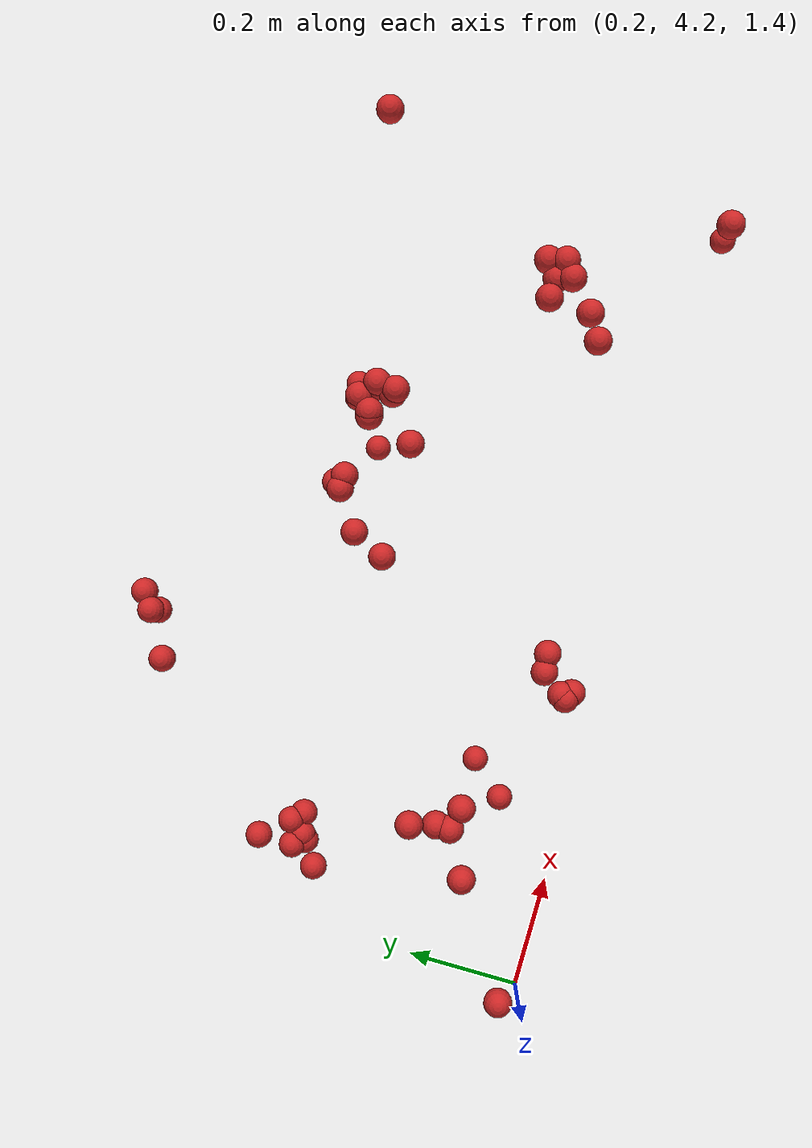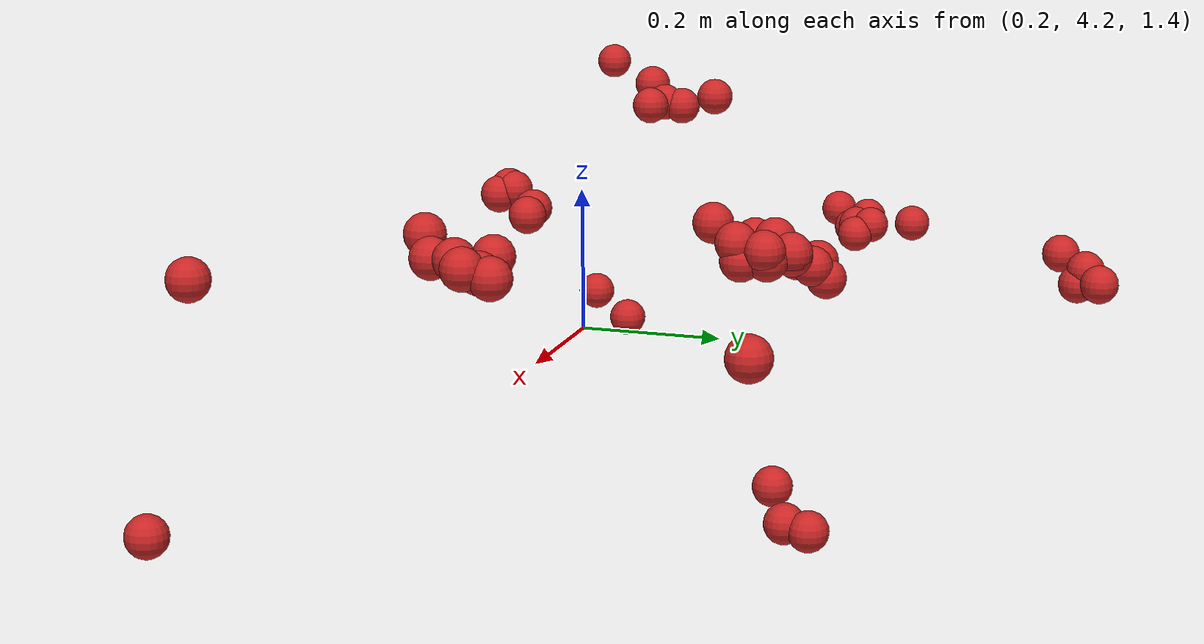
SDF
<sdf version="1.4">
 <model name="fruit_population">
  <static>true</static>
  <link name="fruit_1">
   <pose>0.6268716875807037 4.940532719705032 1.6558627617804011 0 0 0</pose>
   <collision name="fruit_collision_1"><geometry><sphere><radius>0.022</radius></sphere></geometry></collision>
   <visual name="visual">
    <geometry><sphere><radius>0.022</radius></sphere></geometry>
    <material><script><name>Gazebo/Red</name></script></material>
   </visual>
   <inertial>
    <mass>0.05</mass>
    <inertia>
     <ixx>9.679999999999999e-06</ixx>
     <ixy>0.0</ixy>
     <ixz>0.0</ixz>
     <iyy>9.679999999999999e-06</iyy>
     <iyz>0.0</iyz>
     <izz>9.679999999999999e-06</izz>
    </inertia>
   </inertial>
   <sensor name="fruit_contact_1" type="contact">
    <plugin name="contact_plugin_1" filename="libcontact_plugin.so"/>
    <contact><collision>fruit_collision_1</collision><topic>fruit_contact_topic_1</topic></contact>
   </sensor>
  </link>
  <link name="fruit_12">
   <pose>0.44819699912349803 4.381450276059013 1.8008207811406862 0 0 0</pose>
   <collision name="fruit_collision_12"><geometry><sphere><radius>0.022</radius></sphere></geometry></collision>
   <visual name="visual">
    <geometry><sphere><radius>0.022</radius></sphere></geometry>
    <material><script><name>Gazebo/Red</name></script></material>
   </visual>
   <inertial>
    <mass>0.05</mass>
    <inertia>
     <ixx>9.679999999999999e-06</ixx>
     <ixy>0.0</ixy>
     <ixz>0.0</ixz>
     <iyy>9.679999999999999e-06</iyy>
     <iyz>0.0</iyz>
     <izz>9.679999999999999e-06</izz>
    </inertia>
   </inertial>
   <sensor name="fruit_contact_12" type="contact">
    <plugin name="contact_plugin_12" filename="libcontact_plugin.so"/>
    <contact><collision>fruit_collision_12</collision><topic>fruit_contact_topic_12</topic></contact>
   </sensor>
  </link>
  <link name="fruit_18">
   <pose>1.5570567154464645 4.816590890720439 1.7625111153330046 0 0 0</pose>
   <collision name="fruit_collision_18"><geometry><sphere><radius>0.022</radius></sphere></geometry></collision>
   <visual name="visual">
    <geometry><sphere><radius>0.022</radius></sphere></geometry>
    <material><script><name>Gazebo/Red</name></script></material>
   </visual>
   <inertial>
    <mass>0.05</mass>
    <inertia>
     <ixx>9.679999999999999e-06</ixx>
     <ixy>0.0</ixy>
     <ixz>0.0</ixz>
     <iyy>9.679999999999999e-06</iyy>
     <iyz>0.0</iyz>
     <izz>9.679999999999999e-06</izz>
    </inertia>
   </inertial>
   <sensor name="fruit_contact_18" type="contact">
    <plugin name="contact_plugin_18" filename="libcontact_plugin.so"/>
    <contact><collision>fruit_collision_18</collision><topic>fruit_contact_topic_18</topic></contact>
   </sensor>
  </link>
  <link name="fruit_19">
   <pose>1.0663812729314095 4.6417188984754585 1.7673388412002566 0 0 0</pose>
   <collision name="fruit_collision_19"><geometry><sphere><radius>0.022</radius></sphere></geometry></collision>
   <visual name="visual">
    <geometry><sphere><radius>0.022</radius></sphere></geometry>
    <material><script><name>Gazebo/Red</name></script></material>
   </visual>
   <inertial>
    <mass>0.05</mass>
    <inertia>
     <ixx>9.679999999999999e-06</ixx>
     <ixy>0.0</ixy>
     <ixz>0.0</ixz>
     <iyy>9.679999999999999e-06</iyy>
     <iyz>0.0</iyz>
     <izz>9.679999999999999e-06</izz>
    </inertia>
   </inertial>
   <sensor name="fruit_contact_19" type="contact">
    <plugin name="contact_plugin_19" filename="libcontact_plugin.so"/>
    <contact><collision>fruit_collision_19</collision><topic>fruit_contact_topic_19</topic></contact>
   </sensor>
  </link>
  <link name="fruit_38">
   <pose>1.070645255882961 4.709657848097736 1.4847056623996329 0 0 0</pose>
   <collision name="fruit_collision_38"><geometry><sphere><radius>0.022</radius></sphere></geometry></collision>
   <visual name="visual">
    <geometry><sphere><radius>0.022</radius></sphere></geometry>
    <material><script><name>Gazebo/Red</name></script></material>
   </visual>
   <inertial>
    <mass>0.05</mass>
    <inertia>
     <ixx>9.679999999999999e-06</ixx>
     <ixy>0.0</ixy>
     <ixz>0.0</ixz>
     <iyy>9.679999999999999e-06</iyy>
     <iyz>0.0</iyz>
     <izz>9.679999999999999e-06</izz>
    </inertia>
   </inertial>
   <sensor name="fruit_contact_38" type="contact">
    <plugin name="contact_plugin_38" filename="libcontact_plugin.so"/>
    <contact><collision>fruit_collision_38</collision><topic>fruit_contact_topic_38</topic></contact>
   </sensor>
  </link>
  <link name="fruit_53">
   <pose>1.5242109869858662 4.26219862006467 1.785706966964252 0 0 0</pose>
   <collision name="fruit_collision_53"><geometry><sphere><radius>0.022</radius></sphere></geometry></collision>
   <visual name="visual">
    <geometry><sphere><radius>0.022</radius></sphere></geometry>
    <material><script><name>Gazebo/Red</name></script></material>
   </visual>
   <inertial>
    <mass>0.05</mass>
    <inertia>
     <ixx>9.679999999999999e-06</ixx>
     <ixy>0.0</ixy>
     <ixz>0.0</ixz>
     <iyy>9.679999999999999e-06</iyy>
     <iyz>0.0</iyz>
     <izz>9.679999999999999e-06</izz>
    </inertia>
   </inertial>
   <sensor name="fruit_contact_53" type="contact">
    <plugin name="contact_plugin_53" filename="libcontact_plugin.so"/>
    <contact><collision>fruit_collision_53</collision><topic>fruit_contact_topic_53</topic></contact>
   </sensor>
  </link>
  <link name="fruit_69">
   <pose>0.8867764399283509 4.6385173389754195 1.7123552750118896 0 0 0</pose>
   <collision name="fruit_collision_69"><geometry><sphere><radius>0.022</radius></sphere></geometry></collision>
   <visual name="visual">
    <geometry><sphere><radius>0.022</radius></sphere></geometry>
    <material><script><name>Gazebo/Red</name></script></material>
   </visual>
   <inertial>
    <mass>0.05</mass>
    <inertia>
     <ixx>9.679999999999999e-06</ixx>
     <ixy>0.0</ixy>
     <ixz>0.0</ixz>
     <iyy>9.679999999999999e-06</iyy>
     <iyz>0.0</iyz>
     <izz>9.679999999999999e-06</izz>
    </inertia>
   </inertial>
   <sensor name="fruit_contact_69" type="contact">
    <plugin name="contact_plugin_69" filename="libcontact_plugin.so"/>
    <contact><collision>fruit_collision_69</collision><topic>fruit_contact_topic_69</topic></contact>
   </sensor>
  </link>
  <link name="fruit_99">
   <pose>0.36439027850367117 4.60906329372714 1.6344997106774708 0 0 0</pose>
   <collision name="fruit_collision_99"><geometry><sphere><radius>0.022</radius></sphere></geometry></collision>
   <visual name="visual">
    <geometry><sphere><radius>0.022</radius></sphere></geometry>
    <material><script><name>Gazebo/Red</name></script></material>
   </visual>
   <inertial>
    <mass>0.05</mass>
    <inertia>
     <ixx>9.679999999999999e-06</ixx>
     <ixy>0.0</ixy>
     <ixz>0.0</ixz>
     <iyy>9.679999999999999e-06</iyy>
     <iyz>0.0</iyz>
     <izz>9.679999999999999e-06</izz>
    </inertia>
   </inertial>
   <sensor name="fruit_contact_99" type="contact">
    <plugin name="contact_plugin_99" filename="libcontact_plugin.so"/>
    <contact><collision>fruit_collision_99</collision><topic>fruit_contact_topic_99</topic></contact>
   </sensor>
  </link>
  <link name="fruit_157">
   <pose>0.545321587531662 4.3369321960063365 1.5474871934077898 0 0 0</pose>
   <collision name="fruit_collision_157"><geometry><sphere><radius>0.022</radius></sphere></geometry></collision>
   <visual name="visual">
    <geometry><sphere><radius>0.022</radius></sphere></geometry>
    <material><script><name>Gazebo/Red</name></script></material>
   </visual>
   <inertial>
    <mass>0.05</mass>
    <inertia>
     <ixx>9.679999999999999e-06</ixx>
     <ixy>0.0</ixy>
     <ixz>0.0</ixz>
     <iyy>9.679999999999999e-06</iyy>
     <iyz>0.0</iyz>
     <izz>9.679999999999999e-06</izz>
    </inertia>
   </inertial>
   <sensor name="fruit_contact_157" type="contact">
    <plugin name="contact_plugin_157" filename="libcontact_plugin.so"/>
    <contact><collision>fruit_collision_157</collision><topic>fruit_contact_topic_157</topic></contact>
   </sensor>
  </link>
  <link name="fruit_163">
   <pose>1.295377468097587 4.408551309530067 1.789480864994658 0 0 0</pose>
   <collision name="fruit_collision_163"><geometry><sphere><radius>0.022</radius></sphere></geometry></collision>
   <visual name="visual">
    <geometry><sphere><radius>0.022</radius></sphere></geometry>
    <material><script><name>Gazebo/Red</name></script></material>
   </visual>
   <inertial>
    <mass>0.05</mass>
    <inertia>
     <ixx>9.679999999999999e-06</ixx>
     <ixy>0.0</ixy>
     <ixz>0.0</ixz>
     <iyy>9.679999999999999e-06</iyy>
     <iyz>0.0</iyz>
     <izz>9.679999999999999e-06</izz>
    </inertia>
   </inertial>
   <sensor name="fruit_contact_163" type="contact">
    <plugin name="contact_plugin_163" filename="libcontact_plugin.so"/>
    <contact><collision>fruit_collision_163</collision><topic>fruit_contact_topic_163</topic></contact>
   </sensor>
  </link>
  <link name="fruit_188">
   <pose>1.4020292296075825 4.488908763232888 1.7836861283247563 0 0 0</pose>
   <collision name="fruit_collision_188"><geometry><sphere><radius>0.022</radius></sphere></geometry></collision>
   <visual name="visual">
    <geometry><sphere><radius>0.022</radius></sphere></geometry>
    <material><script><name>Gazebo/Red</name></script></material>
   </visual>
   <inertial>
    <mass>0.05</mass>
    <inertia>
     <ixx>9.679999999999999e-06</ixx>
     <ixy>0.0</ixy>
     <ixz>0.0</ixz>
     <iyy>9.679999999999999e-06</iyy>
     <iyz>0.0</iyz>
     <izz>9.679999999999999e-06</izz>
    </inertia>
   </inertial>
   <sensor name="fruit_contact_188" type="contact">
    <plugin name="contact_plugin_188" filename="libcontact_plugin.so"/>
    <contact><collision>fruit_collision_188</collision><topic>fruit_contact_topic_188</topic></contact>
   </sensor>
  </link>
  <link name="fruit_242">
   <pose>1.3400622330531486 4.498283157083825 1.782795921436244 0 0 0</pose>
   <collision name="fruit_collision_242"><geometry><sphere><radius>0.022</radius></sphere></geometry></collision>
   <visual name="visual">
    <geometry><sphere><radius>0.022</radius></sphere></geometry>
    <material><script><name>Gazebo/Red</name></script></material>
   </visual>
   <inertial>
    <mass>0.05</mass>
    <inertia>
     <ixx>9.679999999999999e-06</ixx>
     <ixy>0.0</ixy>
     <ixz>0.0</ixz>
     <iyy>9.679999999999999e-06</iyy>
     <iyz>0.0</iyz>
     <izz>9.679999999999999e-06</izz>
    </inertia>
   </inertial>
   <sensor name="fruit_contact_242" type="contact">
    <plugin name="contact_plugin_242" filename="libcontact_plugin.so"/>
    <contact><collision>fruit_collision_242</collision><topic>fruit_contact_topic_242</topic></contact>
   </sensor>
  </link>
  <link name="fruit_252">
   <pose>0.5153598926560027 4.419124262074022 1.7904099302804168 0 0 0</pose>
   <collision name="fruit_collision_252"><geometry><sphere><radius>0.022</radius></sphere></geometry></collision>
   <visual name="visual">
    <geometry><sphere><radius>0.022</radius></sphere></geometry>
    <material><script><name>Gazebo/Red</name></script></material>
   </visual>
   <inertial>
    <mass>0.05</mass>
    <inertia>
     <ixx>9.679999999999999e-06</ixx>
     <ixy>0.0</ixy>
     <ixz>0.0</ixz>
     <iyy>9.679999999999999e-06</iyy>
     <iyz>0.0</iyz>
     <izz>9.679999999999999e-06</izz>
    </inertia>
   </inertial>
   <sensor name="fruit_contact_252" type="contact">
    <plugin name="contact_plugin_252" filename="libcontact_plugin.so"/>
    <contact><collision>fruit_collision_252</collision><topic>fruit_contact_topic_252</topic></contact>
   </sensor>
  </link>
  <link name="fruit_255">
   <pose>1.1423439730178384 4.692723143088374 1.7469650057438793 0 0 0</pose>
   <collision name="fruit_collision_255"><geometry><sphere><radius>0.022</radius></sphere></geometry></collision>
   <visual name="visual">
    <geometry><sphere><radius>0.022</radius></sphere></geometry>
    <material><script><name>Gazebo/Red</name></script></material>
   </visual>
   <inertial>
    <mass>0.05</mass>
    <inertia>
     <ixx>9.679999999999999e-06</ixx>
     <ixy>0.0</ixy>
     <ixz>0.0</ixz>
     <iyy>9.679999999999999e-06</iyy>
     <iyz>0.0</iyz>
     <izz>9.679999999999999e-06</izz>
    </inertia>
   </inertial>
   <sensor name="fruit_contact_255" type="contact">
    <plugin name="contact_plugin_255" filename="libcontact_plugin.so"/>
    <contact><collision>fruit_collision_255</collision><topic>fruit_contact_topic_255</topic></contact>
   </sensor>
  </link>
  <link name="fruit_300">
   <pose>1.172685055337823 4.775176139858782 1.4737755704153654 0 0 0</pose>
   <collision name="fruit_collision_300"><geometry><sphere><radius>0.022</radius></sphere></geometry></collision>
   <visual name="visual">
    <geometry><sphere><radius>0.022</radius></sphere></geometry>
    <material><script><name>Gazebo/Red</name></script></material>
   </visual>
   <inertial>
    <mass>0.05</mass>
    <inertia>
     <ixx>9.679999999999999e-06</ixx>
     <ixy>0.0</ixy>
     <ixz>0.0</ixz>
     <iyy>9.679999999999999e-06</iyy>
     <iyz>0.0</iyz>
     <izz>9.679999999999999e-06</izz>
    </inertia>
   </inertial>
   <sensor name="fruit_contact_300" type="contact">
    <plugin name="contact_plugin_300" filename="libcontact_plugin.so"/>
    <contact><collision>fruit_collision_300</collision><topic>fruit_contact_topic_300</topic></contact>
   </sensor>
  </link>
  <link name="fruit_322">
   <pose>1.097991436302067 4.717594768584651 1.7626333214689136 0 0 0</pose>
   <collision name="fruit_collision_322"><geometry><sphere><radius>0.022</radius></sphere></geometry></collision>
   <visual name="visual">
    <geometry><sphere><radius>0.022</radius></sphere></geometry>
    <material><script><name>Gazebo/Red</name></script></material>
   </visual>
   <inertial>
    <mass>0.05</mass>
    <inertia>
     <ixx>9.679999999999999e-06</ixx>
     <ixy>0.0</ixy>
     <ixz>0.0</ixz>
     <iyy>9.679999999999999e-06</iyy>
     <iyz>0.0</iyz>
     <izz>9.679999999999999e-06</izz>
    </inertia>
   </inertial>
   <sensor name="fruit_contact_322" type="contact">
    <plugin name="contact_plugin_322" filename="libcontact_plugin.so"/>
    <contact><collision>fruit_collision_322</collision><topic>fruit_contact_topic_322</topic></contact>
   </sensor>
  </link>
  <link name="fruit_335">
   <pose>1.1453027904382111 4.718740151769678 1.7594774257249952 0 0 0</pose>
   <collision name="fruit_collision_335"><geometry><sphere><radius>0.022</radius></sphere></geometry></collision>
   <visual name="visual">
    <geometry><sphere><radius>0.022</radius></sphere></geometry>
    <material><script><name>Gazebo/Red</name></script></material>
   </visual>
   <inertial>
    <mass>0.05</mass>
    <inertia>
     <ixx>9.679999999999999e-06</ixx>
     <ixy>0.0</ixy>
     <ixz>0.0</ixz>
     <iyy>9.679999999999999e-06</iyy>
     <iyz>0.0</iyz>
     <izz>9.679999999999999e-06</izz>
    </inertia>
   </inertial>
   <sensor name="fruit_contact_335" type="contact">
    <plugin name="contact_plugin_335" filename="libcontact_plugin.so"/>
    <contact><collision>fruit_collision_335</collision><topic>fruit_contact_topic_335</topic></contact>
   </sensor>
  </link>
  <link name="fruit_356">
   <pose>0.6982810661970471 4.980665280813307 1.6547869145320597 0 0 0</pose>
   <collision name="fruit_collision_356"><geometry><sphere><radius>0.022</radius></sphere></geometry></collision>
   <visual name="visual">
    <geometry><sphere><radius>0.022</radius></sphere></geometry>
    <material><script><name>Gazebo/Red</name></script></material>
   </visual>
   <inertial>
    <mass>0.05</mass>
    <inertia>
     <ixx>9.679999999999999e-06</ixx>
     <ixy>0.0</ixy>
     <ixz>0.0</ixz>
     <iyy>9.679999999999999e-06</iyy>
     <iyz>0.0</iyz>
     <izz>9.679999999999999e-06</izz>
    </inertia>
   </inertial>
   <sensor name="fruit_contact_356" type="contact">
    <plugin name="contact_plugin_356" filename="libcontact_plugin.so"/>
    <contact><collision>fruit_collision_356</collision><topic>fruit_contact_topic_356</topic></contact>
   </sensor>
  </link>
  <link name="fruit_365">
   <pose>1.1671185223395906 4.748139728810999 1.4779096118876456 0 0 0</pose>
   <collision name="fruit_collision_365"><geometry><sphere><radius>0.022</radius></sphere></geometry></collision>
   <visual name="visual">
    <geometry><sphere><radius>0.022</radius></sphere></geometry>
    <material><script><name>Gazebo/Red</name></script></material>
   </visual>
   <inertial>
    <mass>0.05</mass>
    <inertia>
     <ixx>9.679999999999999e-06</ixx>
     <ixy>0.0</ixy>
     <ixz>0.0</ixz>
     <iyy>9.679999999999999e-06</iyy>
     <iyz>0.0</iyz>
     <izz>9.679999999999999e-06</izz>
    </inertia>
   </inertial>
   <sensor name="fruit_contact_365" type="contact">
    <plugin name="contact_plugin_365" filename="libcontact_plugin.so"/>
    <contact><collision>fruit_collision_365</collision><topic>fruit_contact_topic_365</topic></contact>
   </sensor>
  </link>
  <link name="fruit_395">
   <pose>0.9817444167910996 4.744051529683934 1.6945989434015323 0 0 0</pose>
   <collision name="fruit_collision_395"><geometry><sphere><radius>0.022</radius></sphere></geometry></collision>
   <visual name="visual">
    <geometry><sphere><radius>0.022</radius></sphere></geometry>
    <material><script><name>Gazebo/Red</name></script></material>
   </visual>
   <inertial>
    <mass>0.05</mass>
    <inertia>
     <ixx>9.679999999999999e-06</ixx>
     <ixy>0.0</ixy>
     <ixz>0.0</ixz>
     <iyy>9.679999999999999e-06</iyy>
     <iyz>0.0</iyz>
     <izz>9.679999999999999e-06</izz>
    </inertia>
   </inertial>
   <sensor name="fruit_contact_395" type="contact">
    <plugin name="contact_plugin_395" filename="libcontact_plugin.so"/>
    <contact><collision>fruit_collision_395</collision><topic>fruit_contact_topic_395</topic></contact>
   </sensor>
  </link>
  <link name="fruit_409">
   <pose>1.0913173838853178 4.716090269865388 1.759116730018196 0 0 0</pose>
   <collision name="fruit_collision_409"><geometry><sphere><radius>0.022</radius></sphere></geometry></collision>
   <visual name="visual">
    <geometry><sphere><radius>0.022</radius></sphere></geometry>
    <material><script><name>Gazebo/Red</name></script></material>
   </visual>
   <inertial>
    <mass>0.05</mass>
    <inertia>
     <ixx>9.679999999999999e-06</ixx>
     <ixy>0.0</ixy>
     <ixz>0.0</ixz>
     <iyy>9.679999999999999e-06</iyy>
     <iyz>0.0</iyz>
     <izz>9.679999999999999e-06</izz>
    </inertia>
   </inertial>
   <sensor name="fruit_contact_409" type="contact">
    <plugin name="contact_plugin_409" filename="libcontact_plugin.so"/>
    <contact><collision>fruit_collision_409</collision><topic>fruit_contact_topic_409</topic></contact>
   </sensor>
  </link>
  <link name="fruit_412">
   <pose>0.5951130778094091 4.394124011528825 1.5292582503342225 0 0 0</pose>
   <collision name="fruit_collision_412"><geometry><sphere><radius>0.022</radius></sphere></geometry></collision>
   <visual name="visual">
    <geometry><sphere><radius>0.022</radius></sphere></geometry>
    <material><script><name>Gazebo/Red</name></script></material>
   </visual>
   <inertial>
    <mass>0.05</mass>
    <inertia>
     <ixx>9.679999999999999e-06</ixx>
     <ixy>0.0</ixy>
     <ixz>0.0</ixz>
     <iyy>9.679999999999999e-06</iyy>
     <iyz>0.0</iyz>
     <izz>9.679999999999999e-06</izz>
    </inertia>
   </inertial>
   <sensor name="fruit_contact_412" type="contact">
    <plugin name="contact_plugin_412" filename="libcontact_plugin.so"/>
    <contact><collision>fruit_collision_412</collision><topic>fruit_contact_topic_412</topic></contact>
   </sensor>
  </link>
  <link name="fruit_413">
   <pose>0.9725382806093936 4.732624582610956 1.7116157954532485 0 0 0</pose>
   <collision name="fruit_collision_413"><geometry><sphere><radius>0.022</radius></sphere></geometry></collision>
   <visual name="visual">
    <geometry><sphere><radius>0.022</radius></sphere></geometry>
    <material><script><name>Gazebo/Red</name></script></material>
   </visual>
   <inertial>
    <mass>0.05</mass>
    <inertia>
     <ixx>9.679999999999999e-06</ixx>
     <ixy>0.0</ixy>
     <ixz>0.0</ixz>
     <iyy>9.679999999999999e-06</iyy>
     <iyz>0.0</iyz>
     <izz>9.679999999999999e-06</izz>
    </inertia>
   </inertial>
   <sensor name="fruit_contact_413" type="contact">
    <plugin name="contact_plugin_413" filename="libcontact_plugin.so"/>
    <contact><collision>fruit_collision_413</collision><topic>fruit_contact_topic_413</topic></contact>
   </sensor>
  </link>
  <link name="fruit_432">
   <pose>0.7507250656913239 4.296528254518869 1.7215826404641388 0 0 0</pose>
   <collision name="fruit_collision_432"><geometry><sphere><radius>0.022</radius></sphere></geometry></collision>
   <visual name="visual">
    <geometry><sphere><radius>0.022</radius></sphere></geometry>
    <material><script><name>Gazebo/Red</name></script></material>
   </visual>
   <inertial>
    <mass>0.05</mass>
    <inertia>
     <ixx>9.679999999999999e-06</ixx>
     <ixy>0.0</ixy>
     <ixz>0.0</ixz>
     <iyy>9.679999999999999e-06</iyy>
     <iyz>0.0</iyz>
     <izz>9.679999999999999e-06</izz>
    </inertia>
   </inertial>
   <sensor name="fruit_contact_432" type="contact">
    <plugin name="contact_plugin_432" filename="libcontact_plugin.so"/>
    <contact><collision>fruit_collision_432</collision><topic>fruit_contact_topic_432</topic></contact>
   </sensor>
  </link>
  <link name="fruit_435">
   <pose>1.1415333248598025 4.687539730238879 1.7655265319167788 0 0 0</pose>
   <collision name="fruit_collision_435"><geometry><sphere><radius>0.022</radius></sphere></geometry></collision>
   <visual name="visual">
    <geometry><sphere><radius>0.022</radius></sphere></geometry>
    <material><script><name>Gazebo/Red</name></script></material>
   </visual>
   <inertial>
    <mass>0.05</mass>
    <inertia>
     <ixx>9.679999999999999e-06</ixx>
     <ixy>0.0</ixy>
     <ixz>0.0</ixz>
     <iyy>9.679999999999999e-06</iyy>
     <iyz>0.0</iyz>
     <izz>9.679999999999999e-06</izz>
    </inertia>
   </inertial>
   <sensor name="fruit_contact_435" type="contact">
    <plugin name="contact_plugin_435" filename="libcontact_plugin.so"/>
    <contact><collision>fruit_collision_435</collision><topic>fruit_contact_topic_435</topic></contact>
   </sensor>
  </link>
  <link name="fruit_447">
   <pose>0.42668727103367415 4.665409721074229 1.6295891832143186 0 0 0</pose>
   <collision name="fruit_collision_447"><geometry><sphere><radius>0.022</radius></sphere></geometry></collision>
   <visual name="visual">
    <geometry><sphere><radius>0.022</radius></sphere></geometry>
    <material><script><name>Gazebo/Red</name></script></material>
   </visual>
   <inertial>
    <mass>0.05</mass>
    <inertia>
     <ixx>9.679999999999999e-06</ixx>
     <ixy>0.0</ixy>
     <ixz>0.0</ixz>
     <iyy>9.679999999999999e-06</iyy>
     <iyz>0.0</iyz>
     <izz>9.679999999999999e-06</izz>
    </inertia>
   </inertial>
   <sensor name="fruit_contact_447" type="contact">
    <plugin name="contact_plugin_447" filename="libcontact_plugin.so"/>
    <contact><collision>fruit_collision_447</collision><topic>fruit_contact_topic_447</topic></contact>
   </sensor>
  </link>
  <link name="fruit_451">
   <pose>0.7817834640024806 4.3379617858398465 1.7045733943934085 0 0 0</pose>
   <collision name="fruit_collision_451"><geometry><sphere><radius>0.022</radius></sphere></geometry></collision>
   <visual name="visual">
    <geometry><sphere><radius>0.022</radius></sphere></geometry>
    <material><script><name>Gazebo/Red</name></script></material>
   </visual>
   <inertial>
    <mass>0.05</mass>
    <inertia>
     <ixx>9.679999999999999e-06</ixx>
     <ixy>0.0</ixy>
     <ixz>0.0</ixz>
     <iyy>9.679999999999999e-06</iyy>
     <iyz>0.0</iyz>
     <izz>9.679999999999999e-06</izz>
    </inertia>
   </inertial>
   <sensor name="fruit_contact_451" type="contact">
    <plugin name="contact_plugin_451" filename="libcontact_plugin.so"/>
    <contact><collision>fruit_collision_451</collision><topic>fruit_contact_topic_451</topic></contact>
   </sensor>
  </link>
  <link name="fruit_454">
   <pose>1.5741906275128232 4.233580302229205 1.5458675319499797 0 0 0</pose>
   <collision name="fruit_collision_454"><geometry><sphere><radius>0.022</radius></sphere></geometry></collision>
   <visual name="visual">
    <geometry><sphere><radius>0.022</radius></sphere></geometry>
    <material><script><name>Gazebo/Red</name></script></material>
   </visual>
   <inertial>
    <mass>0.05</mass>
    <inertia>
     <ixx>9.679999999999999e-06</ixx>
     <ixy>0.0</ixy>
     <ixz>0.0</ixz>
     <iyy>9.679999999999999e-06</iyy>
     <iyz>0.0</iyz>
     <izz>9.679999999999999e-06</izz>
    </inertia>
   </inertial>
   <sensor name="fruit_contact_454" type="contact">
    <plugin name="contact_plugin_454" filename="libcontact_plugin.so"/>
    <contact><collision>fruit_collision_454</collision><topic>fruit_contact_topic_454</topic></contact>
   </sensor>
  </link>
  <link name="fruit_456">
   <pose>0.44182261255140226 4.64887360171303 1.6199301048223758 0 0 0</pose>
   <collision name="fruit_collision_456"><geometry><sphere><radius>0.022</radius></sphere></geometry></collision>
   <visual name="visual">
    <geometry><sphere><radius>0.022</radius></sphere></geometry>
    <material><script><name>Gazebo/Red</name></script></material>
   </visual>
   <inertial>
    <mass>0.05</mass>
    <inertia>
     <ixx>9.679999999999999e-06</ixx>
     <ixy>0.0</ixy>
     <ixz>0.0</ixz>
     <iyy>9.679999999999999e-06</iyy>
     <iyz>0.0</iyz>
     <izz>9.679999999999999e-06</izz>
    </inertia>
   </inertial>
   <sensor name="fruit_contact_456" type="contact">
    <plugin name="contact_plugin_456" filename="libcontact_plugin.so"/>
    <contact><collision>fruit_collision_456</collision><topic>fruit_contact_topic_456</topic></contact>
   </sensor>
  </link>
  <link name="fruit_485">
   <pose>1.3976903651793053 4.516371115489015 1.7752943761480415 0 0 0</pose>
   <collision name="fruit_collision_485"><geometry><sphere><radius>0.022</radius></sphere></geometry></collision>
   <visual name="visual">
    <geometry><sphere><radius>0.022</radius></sphere></geometry>
    <material><script><name>Gazebo/Red</name></script></material>
   </visual>
   <inertial>
    <mass>0.05</mass>
    <inertia>
     <ixx>9.679999999999999e-06</ixx>
     <ixy>0.0</ixy>
     <ixz>0.0</ixz>
     <iyy>9.679999999999999e-06</iyy>
     <iyz>0.0</iyz>
     <izz>9.679999999999999e-06</izz>
    </inertia>
   </inertial>
   <sensor name="fruit_contact_485" type="contact">
    <plugin name="contact_plugin_485" filename="libcontact_plugin.so"/>
    <contact><collision>fruit_collision_485</collision><topic>fruit_contact_topic_485</topic></contact>
   </sensor>
  </link>
  <link name="fruit_490">
   <pose>0.5150994826582773 4.441160708165058 1.7865277228738943 0 0 0</pose>
   <collision name="fruit_collision_490"><geometry><sphere><radius>0.022</radius></sphere></geometry></collision>
   <visual name="visual">
    <geometry><sphere><radius>0.022</radius></sphere></geometry>
    <material><script><name>Gazebo/Red</name></script></material>
   </visual>
   <inertial>
    <mass>0.05</mass>
    <inertia>
     <ixx>9.679999999999999e-06</ixx>
     <ixy>0.0</ixy>
     <ixz>0.0</ixz>
     <iyy>9.679999999999999e-06</iyy>
     <iyz>0.0</iyz>
     <izz>9.679999999999999e-06</izz>
    </inertia>
   </inertial>
   <sensor name="fruit_contact_490" type="contact">
    <plugin name="contact_plugin_490" filename="libcontact_plugin.so"/>
    <contact><collision>fruit_collision_490</collision><topic>fruit_contact_topic_490</topic></contact>
   </sensor>
  </link>
  <link name="fruit_520">
   <pose>1.1183958682522768 4.740516934102793 1.7530044779291793 0 0 0</pose>
   <collision name="fruit_collision_520"><geometry><sphere><radius>0.022</radius></sphere></geometry></collision>
   <visual name="visual">
    <geometry><sphere><radius>0.022</radius></sphere></geometry>
    <material><script><name>Gazebo/Red</name></script></material>
   </visual>
   <inertial>
    <mass>0.05</mass>
    <inertia>
     <ixx>9.679999999999999e-06</ixx>
     <ixy>0.0</ixy>
     <ixz>0.0</ixz>
     <iyy>9.679999999999999e-06</iyy>
     <iyz>0.0</iyz>
     <izz>9.679999999999999e-06</izz>
    </inertia>
   </inertial>
   <sensor name="fruit_contact_520" type="contact">
    <plugin name="contact_plugin_520" filename="libcontact_plugin.so"/>
    <contact><collision>fruit_collision_520</collision><topic>fruit_contact_topic_520</topic></contact>
   </sensor>
  </link>
  <link name="fruit_531">
   <pose>0.7554418964651207 4.3043504060428415 1.7199079048565729 0 0 0</pose>
   <collision name="fruit_collision_531"><geometry><sphere><radius>0.022</radius></sphere></geometry></collision>
   <visual name="visual">
    <geometry><sphere><radius>0.022</radius></sphere></geometry>
    <material><script><name>Gazebo/Red</name></script></material>
   </visual>
   <inertial>
    <mass>0.05</mass>
    <inertia>
     <ixx>9.679999999999999e-06</ixx>
     <ixy>0.0</ixy>
     <ixz>0.0</ixz>
     <iyy>9.679999999999999e-06</iyy>
     <iyz>0.0</iyz>
     <izz>9.679999999999999e-06</izz>
    </inertia>
   </inertial>
   <sensor name="fruit_contact_531" type="contact">
    <plugin name="contact_plugin_531" filename="libcontact_plugin.so"/>
    <contact><collision>fruit_collision_531</collision><topic>fruit_contact_topic_531</topic></contact>
   </sensor>
  </link>
  <link name="fruit_540">
   <pose>1.3737262972457847 4.495550665359842 1.7735194315962335 0 0 0</pose>
   <collision name="fruit_collision_540"><geometry><sphere><radius>0.022</radius></sphere></geometry></collision>
   <visual name="visual">
    <geometry><sphere><radius>0.022</radius></sphere></geometry>
    <material><script><name>Gazebo/Red</name></script></material>
   </visual>
   <inertial>
    <mass>0.05</mass>
    <inertia>
     <ixx>9.679999999999999e-06</ixx>
     <ixy>0.0</ixy>
     <ixz>0.0</ixz>
     <iyy>9.679999999999999e-06</iyy>
     <iyz>0.0</iyz>
     <izz>9.679999999999999e-06</izz>
    </inertia>
   </inertial>
   <sensor name="fruit_contact_540" type="contact">
    <plugin name="contact_plugin_540" filename="libcontact_plugin.so"/>
    <contact><collision>fruit_collision_540</collision><topic>fruit_contact_topic_540</topic></contact>
   </sensor>
  </link>
  <link name="fruit_553">
   <pose>1.378638418682536 4.472394453300827 1.786319241136946 0 0 0</pose>
   <collision name="fruit_collision_553"><geometry><sphere><radius>0.022</radius></sphere></geometry></collision>
   <visual name="visual">
    <geometry><sphere><radius>0.022</radius></sphere></geometry>
    <material><script><name>Gazebo/Red</name></script></material>
   </visual>
   <inertial>
    <mass>0.05</mass>
    <inertia>
     <ixx>9.679999999999999e-06</ixx>
     <ixy>0.0</ixy>
     <ixz>0.0</ixz>
     <iyy>9.679999999999999e-06</iyy>
     <iyz>0.0</iyz>
     <izz>9.679999999999999e-06</izz>
    </inertia>
   </inertial>
   <sensor name="fruit_contact_553" type="contact">
    <plugin name="contact_plugin_553" filename="libcontact_plugin.so"/>
    <contact><collision>fruit_collision_553</collision><topic>fruit_contact_topic_553</topic></contact>
   </sensor>
  </link>
  <link name="fruit_568">
   <pose>1.1161908178575783 4.740187038432743 1.749870425894025 0 0 0</pose>
   <collision name="fruit_collision_568"><geometry><sphere><radius>0.022</radius></sphere></geometry></collision>
   <visual name="visual">
    <geometry><sphere><radius>0.022</radius></sphere></geometry>
    <material><script><name>Gazebo/Red</name></script></material>
   </visual>
   <inertial>
    <mass>0.05</mass>
    <inertia>
     <ixx>9.679999999999999e-06</ixx>
     <ixy>0.0</ixy>
     <ixz>0.0</ixz>
     <iyy>9.679999999999999e-06</iyy>
     <iyz>0.0</iyz>
     <izz>9.679999999999999e-06</izz>
    </inertia>
   </inertial>
   <sensor name="fruit_contact_568" type="contact">
    <plugin name="contact_plugin_568" filename="libcontact_plugin.so"/>
    <contact><collision>fruit_collision_568</collision><topic>fruit_contact_topic_568</topic></contact>
   </sensor>
  </link>
  <link name="fruit_578">
   <pose>0.4082531009007495 4.642266115861214 1.625082324321932 0 0 0</pose>
   <collision name="fruit_collision_578"><geometry><sphere><radius>0.022</radius></sphere></geometry></collision>
   <visual name="visual">
    <geometry><sphere><radius>0.022</radius></sphere></geometry>
    <material><script><name>Gazebo/Red</name></script></material>
   </visual>
   <inertial>
    <mass>0.05</mass>
    <inertia>
     <ixx>9.679999999999999e-06</ixx>
     <ixy>0.0</ixy>
     <ixz>0.0</ixz>
     <iyy>9.679999999999999e-06</iyy>
     <iyz>0.0</iyz>
     <izz>9.679999999999999e-06</izz>
    </inertia>
   </inertial>
   <sensor name="fruit_contact_578" type="contact">
    <plugin name="contact_plugin_578" filename="libcontact_plugin.so"/>
    <contact><collision>fruit_collision_578</collision><topic>fruit_contact_topic_578</topic></contact>
   </sensor>
  </link>
  <link name="fruit_588">
   <pose>1.3364011486071987 4.430836293358963 1.7755797829930178 0 0 0</pose>
   <collision name="fruit_collision_588"><geometry><sphere><radius>0.022</radius></sphere></geometry></collision>
   <visual name="visual">
    <geometry><sphere><radius>0.022</radius></sphere></geometry>
    <material><script><name>Gazebo/Red</name></script></material>
   </visual>
   <inertial>
    <mass>0.05</mass>
    <inertia>
     <ixx>9.679999999999999e-06</ixx>
     <ixy>0.0</ixy>
     <ixz>0.0</ixz>
     <iyy>9.679999999999999e-06</iyy>
     <iyz>0.0</iyz>
     <izz>9.679999999999999e-06</izz>
    </inertia>
   </inertial>
   <sensor name="fruit_contact_588" type="contact">
    <plugin name="contact_plugin_588" filename="libcontact_plugin.so"/>
    <contact><collision>fruit_collision_588</collision><topic>fruit_contact_topic_588</topic></contact>
   </sensor>
  </link>
  <link name="fruit_613">
   <pose>0.7001327884295254 4.971881489164065 1.638438076571608 0 0 0</pose>
   <collision name="fruit_collision_613"><geometry><sphere><radius>0.022</radius></sphere></geometry></collision>
   <visual name="visual">
    <geometry><sphere><radius>0.022</radius></sphere></geometry>
    <material><script><name>Gazebo/Red</name></script></material>
   </visual>
   <inertial>
    <mass>0.05</mass>
    <inertia>
     <ixx>9.679999999999999e-06</ixx>
     <ixy>0.0</ixy>
     <ixz>0.0</ixz>
     <iyy>9.679999999999999e-06</iyy>
     <iyz>0.0</iyz>
     <izz>9.679999999999999e-06</izz>
    </inertia>
   </inertial>
   <sensor name="fruit_contact_613" type="contact">
    <plugin name="contact_plugin_613" filename="libcontact_plugin.so"/>
    <contact><collision>fruit_collision_613</collision><topic>fruit_contact_topic_613</topic></contact>
   </sensor>
  </link>
  <link name="fruit_619">
   <pose>1.1351478964155628 4.690693758510558 1.755709158187302 0 0 0</pose>
   <collision name="fruit_collision_619"><geometry><sphere><radius>0.022</radius></sphere></geometry></collision>
   <visual name="visual">
    <geometry><sphere><radius>0.022</radius></sphere></geometry>
    <material><script><name>Gazebo/Red</name></script></material>
   </visual>
   <inertial>
    <mass>0.05</mass>
    <inertia>
     <ixx>9.679999999999999e-06</ixx>
     <ixy>0.0</ixy>
     <ixz>0.0</ixz>
     <iyy>9.679999999999999e-06</iyy>
     <iyz>0.0</iyz>
     <izz>9.679999999999999e-06</izz>
    </inertia>
   </inertial>
   <sensor name="fruit_contact_619" type="contact">
    <plugin name="contact_plugin_619" filename="libcontact_plugin.so"/>
    <contact><collision>fruit_collision_619</collision><topic>fruit_contact_topic_619</topic></contact>
   </sensor>
  </link>
  <link name="fruit_641">
   <pose>0.3871534274314089 4.7105750717825545 1.6261360374046516 0 0 0</pose>
   <collision name="fruit_collision_641"><geometry><sphere><radius>0.022</radius></sphere></geometry></collision>
   <visual name="visual">
    <geometry><sphere><radius>0.022</radius></sphere></geometry>
    <material><script><name>Gazebo/Red</name></script></material>
   </visual>
   <inertial>
    <mass>0.05</mass>
    <inertia>
     <ixx>9.679999999999999e-06</ixx>
     <ixy>0.0</ixy>
     <ixz>0.0</ixz>
     <iyy>9.679999999999999e-06</iyy>
     <iyz>0.0</iyz>
     <izz>9.679999999999999e-06</izz>
    </inertia>
   </inertial>
   <sensor name="fruit_contact_641" type="contact">
    <plugin name="contact_plugin_641" filename="libcontact_plugin.so"/>
    <contact><collision>fruit_collision_641</collision><topic>fruit_contact_topic_641</topic></contact>
   </sensor>
  </link>
  <link name="fruit_661">
   <pose>0.5058108533058244 4.481029398945172 1.7986693390572224 0 0 0</pose>
   <collision name="fruit_collision_661"><geometry><sphere><radius>0.022</radius></sphere></geometry></collision>
   <visual name="visual">
    <geometry><sphere><radius>0.022</radius></sphere></geometry>
    <material><script><name>Gazebo/Red</name></script></material>
   </visual>
   <inertial>
    <mass>0.05</mass>
    <inertia>
     <ixx>9.679999999999999e-06</ixx>
     <ixy>0.0</ixy>
     <ixz>0.0</ixz>
     <iyy>9.679999999999999e-06</iyy>
     <iyz>0.0</iyz>
     <izz>9.679999999999999e-06</izz>
    </inertia>
   </inertial>
   <sensor name="fruit_contact_661" type="contact">
    <plugin name="contact_plugin_661" filename="libcontact_plugin.so"/>
    <contact><collision>fruit_collision_661</collision><topic>fruit_contact_topic_661</topic></contact>
   </sensor>
  </link>
  <link name="fruit_663">
   <pose>0.38863745138191097 4.652977866281858 1.6320655367564914 0 0 0</pose>
   <collision name="fruit_collision_663"><geometry><sphere><radius>0.022</radius></sphere></geometry></collision>
   <visual name="visual">
    <geometry><sphere><radius>0.022</radius></sphere></geometry>
    <material><script><name>Gazebo/Red</name></script></material>
   </visual>
   <inertial>
    <mass>0.05</mass>
    <inertia>
     <ixx>9.679999999999999e-06</ixx>
     <ixy>0.0</ixy>
     <ixz>0.0</ixz>
     <iyy>9.679999999999999e-06</iyy>
     <iyz>0.0</iyz>
     <izz>9.679999999999999e-06</izz>
    </inertia>
   </inertial>
   <sensor name="fruit_contact_663" type="contact">
    <plugin name="contact_plugin_663" filename="libcontact_plugin.so"/>
    <contact><collision>fruit_collision_663</collision><topic>fruit_contact_topic_663</topic></contact>
   </sensor>
  </link>
  <link name="fruit_685">
   <pose>0.3984829478981459 4.634313057103822 1.619317015470248 0 0 0</pose>
   <collision name="fruit_collision_685"><geometry><sphere><radius>0.022</radius></sphere></geometry></collision>
   <visual name="visual">
    <geometry><sphere><radius>0.022</radius></sphere></geometry>
    <material><script><name>Gazebo/Red</name></script></material>
   </visual>
   <inertial>
    <mass>0.05</mass>
    <inertia>
     <ixx>9.679999999999999e-06</ixx>
     <ixy>0.0</ixy>
     <ixz>0.0</ixz>
     <iyy>9.679999999999999e-06</iyy>
     <iyz>0.0</iyz>
     <izz>9.679999999999999e-06</izz>
    </inertia>
   </inertial>
   <sensor name="fruit_contact_685" type="contact">
    <plugin name="contact_plugin_685" filename="libcontact_plugin.so"/>
    <contact><collision>fruit_collision_685</collision><topic>fruit_contact_topic_685</topic></contact>
   </sensor>
  </link>
  <link name="fruit_693">
   <pose>0.9124026583311579 4.692955924107653 1.695725833816457 0 0 0</pose>
   <collision name="fruit_collision_693"><geometry><sphere><radius>0.022</radius></sphere></geometry></collision>
   <visual name="visual">
    <geometry><sphere><radius>0.022</radius></sphere></geometry>
    <material><script><name>Gazebo/Red</name></script></material>
   </visual>
   <inertial>
    <mass>0.05</mass>
    <inertia>
     <ixx>9.679999999999999e-06</ixx>
     <ixy>0.0</ixy>
     <ixz>0.0</ixz>
     <iyy>9.679999999999999e-06</iyy>
     <iyz>0.0</iyz>
     <izz>9.679999999999999e-06</izz>
    </inertia>
   </inertial>
   <sensor name="fruit_contact_693" type="contact">
    <plugin name="contact_plugin_693" filename="libcontact_plugin.so"/>
    <contact><collision>fruit_collision_693</collision><topic>fruit_contact_topic_693</topic></contact>
   </sensor>
  </link>
  <link name="fruit_694">
   <pose>0.7625683353484057 4.288017134559075 1.7144415911540511 0 0 0</pose>
   <collision name="fruit_collision_694"><geometry><sphere><radius>0.022</radius></sphere></geometry></collision>
   <visual name="visual">
    <geometry><sphere><radius>0.022</radius></sphere></geometry>
    <material><script><name>Gazebo/Red</name></script></material>
   </visual>
   <inertial>
    <mass>0.05</mass>
    <inertia>
     <ixx>9.679999999999999e-06</ixx>
     <ixy>0.0</ixy>
     <ixz>0.0</ixz>
     <iyy>9.679999999999999e-06</iyy>
     <iyz>0.0</iyz>
     <izz>9.679999999999999e-06</izz>
    </inertia>
   </inertial>
   <sensor name="fruit_contact_694" type="contact">
    <plugin name="contact_plugin_694" filename="libcontact_plugin.so"/>
    <contact><collision>fruit_collision_694</collision><topic>fruit_contact_topic_694</topic></contact>
   </sensor>
  </link>
  <link name="fruit_722">
   <pose>0.5503742963372752 4.410581307835436 1.791539200831399 0 0 0</pose>
   <collision name="fruit_collision_722"><geometry><sphere><radius>0.022</radius></sphere></geometry></collision>
   <visual name="visual">
    <geometry><sphere><radius>0.022</radius></sphere></geometry>
    <material><script><name>Gazebo/Red</name></script></material>
   </visual>
   <inertial>
    <mass>0.05</mass>
    <inertia>
     <ixx>9.679999999999999e-06</ixx>
     <ixy>0.0</ixy>
     <ixz>0.0</ixz>
     <iyy>9.679999999999999e-06</iyy>
     <iyz>0.0</iyz>
     <izz>9.679999999999999e-06</izz>
    </inertia>
   </inertial>
   <sensor name="fruit_contact_722" type="contact">
    <plugin name="contact_plugin_722" filename="libcontact_plugin.so"/>
    <contact><collision>fruit_collision_722</collision><topic>fruit_contact_topic_722</topic></contact>
   </sensor>
  </link>
  <link name="fruit_727">
   <pose>0.9945442792043351 4.73174690141452 1.7102467251879818 0 0 0</pose>
   <collision name="fruit_collision_727"><geometry><sphere><radius>0.022</radius></sphere></geometry></collision>
   <visual name="visual">
    <geometry><sphere><radius>0.022</radius></sphere></geometry>
    <material><script><name>Gazebo/Red</name></script></material>
   </visual>
   <inertial>
    <mass>0.05</mass>
    <inertia>
     <ixx>9.679999999999999e-06</ixx>
     <ixy>0.0</ixy>
     <ixz>0.0</ixz>
     <iyy>9.679999999999999e-06</iyy>
     <iyz>0.0</iyz>
     <izz>9.679999999999999e-06</izz>
    </inertia>
   </inertial>
   <sensor name="fruit_contact_727" type="contact">
    <plugin name="contact_plugin_727" filename="libcontact_plugin.so"/>
    <contact><collision>fruit_collision_727</collision><topic>fruit_contact_topic_727</topic></contact>
   </sensor>
  </link>
  <link name="fruit_737">
   <pose>0.7240187049650412 5.000776679303786 1.645348869965178 0 0 0</pose>
   <collision name="fruit_collision_737"><geometry><sphere><radius>0.022</radius></sphere></geometry></collision>
   <visual name="visual">
    <geometry><sphere><radius>0.022</radius></sphere></geometry>
    <material><script><name>Gazebo/Red</name></script></material>
   </visual>
   <inertial>
    <mass>0.05</mass>
    <inertia>
     <ixx>9.679999999999999e-06</ixx>
     <ixy>0.0</ixy>
     <ixz>0.0</ixz>
     <iyy>9.679999999999999e-06</iyy>
     <iyz>0.0</iyz>
     <izz>9.679999999999999e-06</izz>
    </inertia>
   </inertial>
   <sensor name="fruit_contact_737" type="contact">
    <plugin name="contact_plugin_737" filename="libcontact_plugin.so"/>
    <contact><collision>fruit_collision_737</collision><topic>fruit_contact_topic_737</topic></contact>
   </sensor>
  </link>
  <link name="fruit_752">
   <pose>1.1384474780899516 4.71993300259884 1.7482013919894226 0 0 0</pose>
   <collision name="fruit_collision_752"><geometry><sphere><radius>0.022</radius></sphere></geometry></collision>
   <visual name="visual">
    <geometry><sphere><radius>0.022</radius></sphere></geometry>
    <material><script><name>Gazebo/Red</name></script></material>
   </visual>
   <inertial>
    <mass>0.05</mass>
    <inertia>
     <ixx>9.679999999999999e-06</ixx>
     <ixy>0.0</ixy>
     <ixz>0.0</ixz>
     <iyy>9.679999999999999e-06</iyy>
     <iyz>0.0</iyz>
     <izz>9.679999999999999e-06</izz>
    </inertia>
   </inertial>
   <sensor name="fruit_contact_752" type="contact">
    <plugin name="contact_plugin_752" filename="libcontact_plugin.so"/>
    <contact><collision>fruit_collision_752</collision><topic>fruit_contact_topic_752</topic></contact>
   </sensor>
  </link>
  <link name="fruit_780">
   <pose>0.8113943727893826 4.340927786770561 1.7023693075256097 0 0 0</pose>
   <collision name="fruit_collision_780"><geometry><sphere><radius>0.022</radius></sphere></geometry></collision>
   <visual name="visual">
    <geometry><sphere><radius>0.022</radius></sphere></geometry>
    <material><script><name>Gazebo/Red</name></script></material>
   </visual>
   <inertial>
    <mass>0.05</mass>
    <inertia>
     <ixx>9.679999999999999e-06</ixx>
     <ixy>0.0</ixy>
     <ixz>0.0</ixz>
     <iyy>9.679999999999999e-06</iyy>
     <iyz>0.0</iyz>
     <izz>9.679999999999999e-06</izz>
    </inertia>
   </inertial>
   <sensor name="fruit_contact_780" type="contact">
    <plugin name="contact_plugin_780" filename="libcontact_plugin.so"/>
    <contact><collision>fruit_collision_780</collision><topic>fruit_contact_topic_780</topic></contact>
   </sensor>
  </link>
  <link name="fruit_790">
   <pose>0.2834408628619576 4.276004086241643 1.7992938844925896 0 0 0</pose>
   <collision name="fruit_collision_790"><geometry><sphere><radius>0.022</radius></sphere></geometry></collision>
   <visual name="visual">
    <geometry><sphere><radius>0.022</radius></sphere></geometry>
    <material><script><name>Gazebo/Red</name></script></material>
   </visual>
   <inertial>
    <mass>0.05</mass>
    <inertia>
     <ixx>9.679999999999999e-06</ixx>
     <ixy>0.0</ixy>
     <ixz>0.0</ixz>
     <iyy>9.679999999999999e-06</iyy>
     <iyz>0.0</iyz>
     <izz>9.679999999999999e-06</izz>
    </inertia>
   </inertial>
   <sensor name="fruit_contact_790" type="contact">
    <plugin name="contact_plugin_790" filename="libcontact_plugin.so"/>
    <contact><collision>fruit_collision_790</collision><topic>fruit_contact_topic_790</topic></contact>
   </sensor>
  </link>
 </model>
</sdf>
